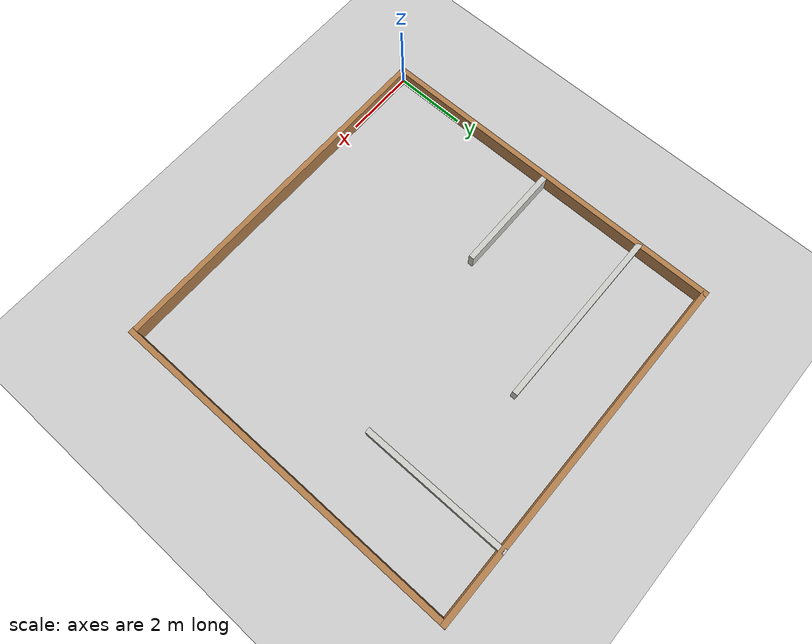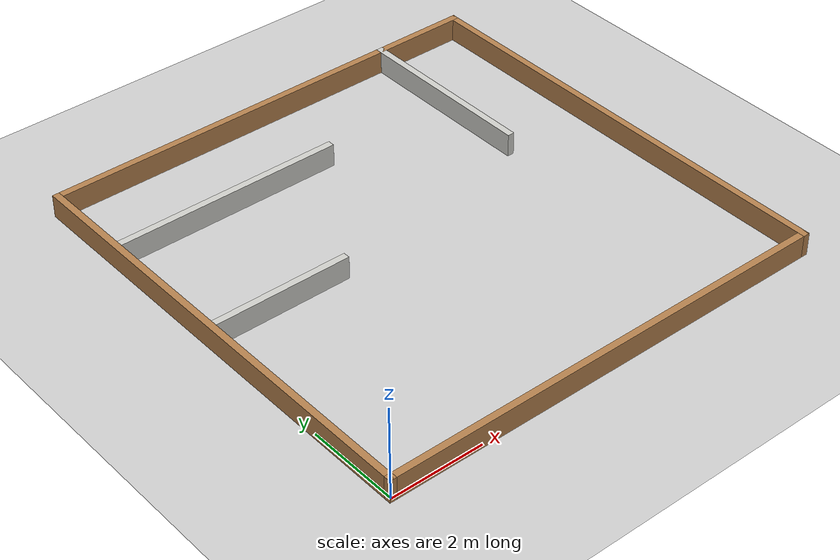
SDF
<sdf version="1.6">
 <world name="default">
  <light name="sun" type="directional">
   <pose>0 0 10 0 -0 0</pose>
   <diffuse>0.8 0.8 0.8 1</diffuse>
   <specular>0.2 0.2 0.2 1</specular>
   <attenuation>
    <range>1000</range>
    <constant>0.9</constant>
    <linear>0.01</linear>
    <quadratic>0.001</quadratic>
   </attenuation>
   <direction>-0.5 0.1 -0.9</direction>
  </light>
  <model name="ground_plane">
   <static>1</static>
   <link name="link">
    <collision name="collision">
     <geometry><plane><normal>0 0 1</normal><size>100 100</size></plane></geometry>
     <surface>
      <contact><collide_bitmask>65535</collide_bitmask></contact>
      <friction><ode><mu>100</mu><mu2>50</mu2></ode></friction>
     </surface>
    </collision>
    <visual name="visual">
     <cast_shadows>0</cast_shadows>
     <geometry><plane><normal>0 0 1</normal><size>100 100</size></plane></geometry>
     <material>
      <script><uri>file://media/materials/scripts/gazebo.material</uri><name>Gazebo/Grey</name></script>
     </material>
    </visual>
   </link>
  </model>
  <gravity>0 0 -9.8</gravity>
  <magnetic_field>6e-06 2.3e-05 -4.2e-05</magnetic_field>
  <atmosphere type="adiabatic"/>
  <physics name="default_physics" default="0" type="ode">
   <max_step_size>0.001</max_step_size>
   <real_time_factor>1</real_time_factor>
   <real_time_update_rate>1000</real_time_update_rate>
  </physics>
  <scene><ambient>0.4 0.4 0.4 1</ambient><background>0.7 0.7 0.7 1</background><shadows>1</shadows></scene>
  <audio><device>default</device></audio>
  <spherical_coordinates>
   <surface_model>EARTH_WGS84</surface_model>
   <latitude_deg>0</latitude_deg>
   <longitude_deg>0</longitude_deg>
   <elevation>0</elevation>
   <heading_deg>0</heading_deg>
  </spherical_coordinates>
  <model name="Model1">
   <pose>5 5 0 0 -0 0</pose>
   <link name="Wall_1">
    <collision name="Wall_1_Collision">
     <geometry><box><size>10.15 0.15 0.5</size></box></geometry>
     <pose>0 0 0.25 0 -0 0</pose>
    </collision>
    <visual name="Wall_1_Visual">
     <pose>0 0 0.25 0 -0 0</pose>
     <geometry><box><size>10.15 0.15 0.5</size></box></geometry>
     <material>
      <script><uri>file://media/materials/scripts/gazebo.material</uri><name>Gazebo/Wood</name></script>
      <ambient>1 1 1 1</ambient>
     </material>
     <meta><layer>0</layer></meta>
    </visual>
    <pose>-0 -5 0 0 -0 0</pose>
   </link>
   <link name="Wall_12">
    <collision name="Wall_12_Collision">
     <geometry><box><size>4.15 0.15 0.5</size></box></geometry>
     <pose>0 0 0.25 0 -0 0</pose>
    </collision>
    <visual name="Wall_12_Visual">
     <pose>0 0 0.25 0 -0 0</pose>
     <geometry><box><size>4.15 0.15 0.5</size></box></geometry>
     <material>
      <script><uri>file://media/materials/scripts/gazebo.material</uri><name>Gazebo/CeilingTiled</name></script>
      <ambient>1 0.764706 0.305882 1</ambient>
     </material>
     <meta><layer>0</layer></meta>
    </visual>
    <pose>3 3 0 0 -0 -1.5708</pose>
   </link>
   <link name="Wall_14">
    <collision name="Wall_14_Collision">
     <geometry><box><size>3.15 0.15 0.5</size></box></geometry>
     <pose>0 0 0.25 0 -0 0</pose>
    </collision>
    <visual name="Wall_14_Visual">
     <pose>0 0 0.25 0 -0 0</pose>
     <geometry><box><size>3.15 0.15 0.5</size></box></geometry>
     <material>
      <script><uri>file://media/materials/scripts/gazebo.material</uri><name>Gazebo/CeilingTiled</name></script>
      <ambient>1 0.764706 0.305882 1</ambient>
     </material>
     <meta><layer>0</layer></meta>
    </visual>
    <pose>-3.5 -0 0 0 -0 0</pose>
   </link>
   <link name="Wall_16">
    <collision name="Wall_16_Collision">
     <geometry><box><size>5.15 0.15 0.5</size></box></geometry>
     <pose>0 0 0.25 0 -0 0</pose>
    </collision>
    <visual name="Wall_16_Visual">
     <pose>0 0 0.25 0 -0 0</pose>
     <geometry><box><size>5.15 0.15 0.5</size></box></geometry>
     <material>
      <script><uri>file://media/materials/scripts/gazebo.material</uri><name>Gazebo/CeilingTiled</name></script>
      <ambient>1 0.764706 0.305882 1</ambient>
     </material>
     <meta><layer>0</layer></meta>
    </visual>
    <pose>-2.5 3 0 0 -0 0</pose>
   </link>
   <link name="Wall_4">
    <collision name="Wall_4_Collision">
     <geometry><box><size>10.15 0.15 0.5</size></box></geometry>
     <pose>0 0 0.25 0 -0 0</pose>
    </collision>
    <visual name="Wall_4_Visual">
     <pose>0 0 0.25 0 -0 0</pose>
     <geometry><box><size>10.15 0.15 0.5</size></box></geometry>
     <material>
      <script><uri>file://media/materials/scripts/gazebo.material</uri><name>Gazebo/Wood</name></script>
      <ambient>1 1 1 1</ambient>
     </material>
     <meta><layer>0</layer></meta>
    </visual>
    <pose>-5 -0 0 0 -0 1.5708</pose>
   </link>
   <link name="Wall_5">
    <collision name="Wall_5_Collision">
     <geometry><box><size>10.15 0.15 0.5</size></box></geometry>
     <pose>0 0 0.25 0 -0 0</pose>
    </collision>
    <visual name="Wall_5_Visual">
     <pose>0 0 0.25 0 -0 0</pose>
     <geometry><box><size>10.15 0.15 0.5</size></box></geometry>
     <material>
      <script><uri>file://media/materials/scripts/gazebo.material</uri><name>Gazebo/Wood</name></script>
      <ambient>1 1 1 1</ambient>
     </material>
     <meta><layer>0</layer></meta>
    </visual>
    <pose>-0 5 0 0 -0 0</pose>
   </link>
   <link name="Wall_6">
    <collision name="Wall_6_Collision">
     <geometry><box><size>10.15 0.15 0.5</size></box></geometry>
     <pose>0 0 0.25 0 -0 0</pose>
    </collision>
    <visual name="Wall_6_Visual">
     <pose>0 0 0.25 0 -0 0</pose>
     <geometry><box><size>10.15 0.15 0.5</size></box></geometry>
     <material>
      <script><uri>file://media/materials/scripts/gazebo.material</uri><name>Gazebo/Wood</name></script>
      <ambient>1 1 1 1</ambient>
     </material>
     <meta><layer>0</layer></meta>
    </visual>
    <pose>5 -0 0 0 -0 -1.5708</pose>
   </link>
   <static>1</static>
  </model>
 </world>
</sdf>
